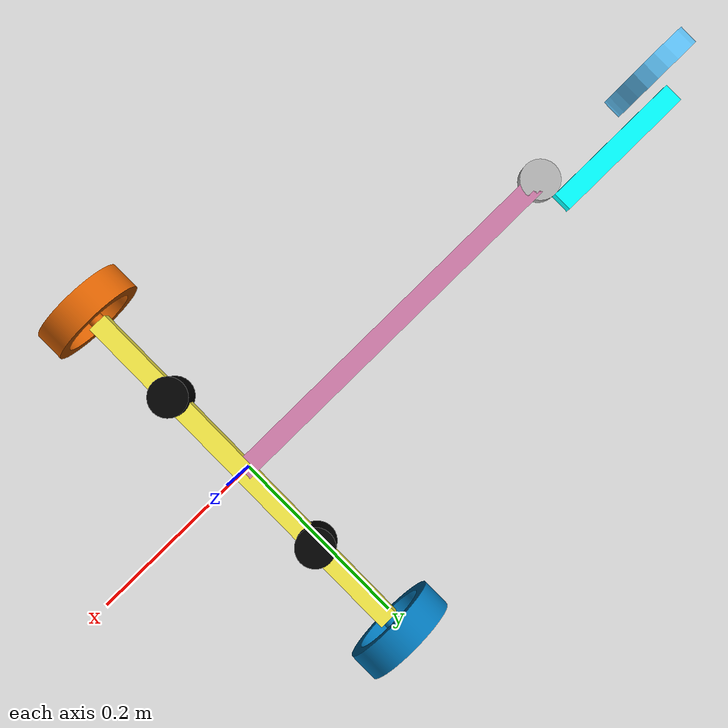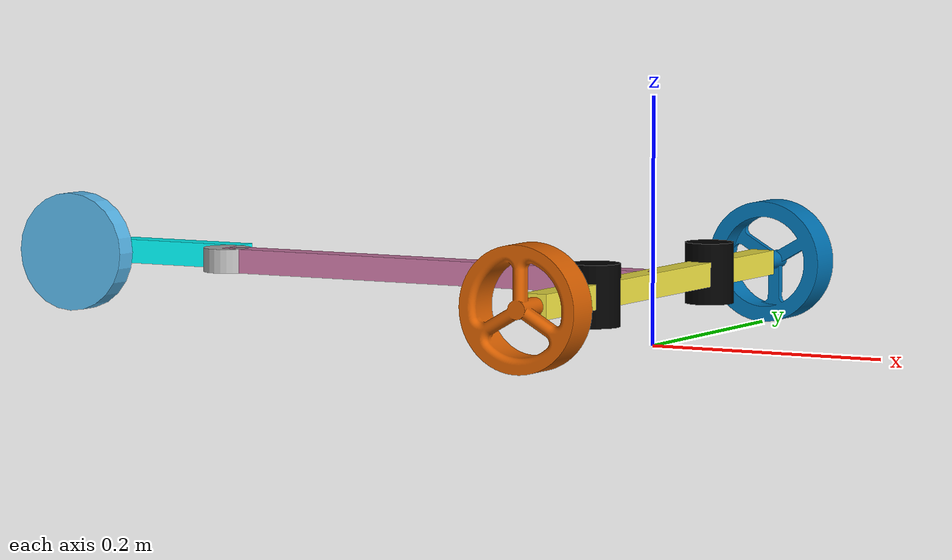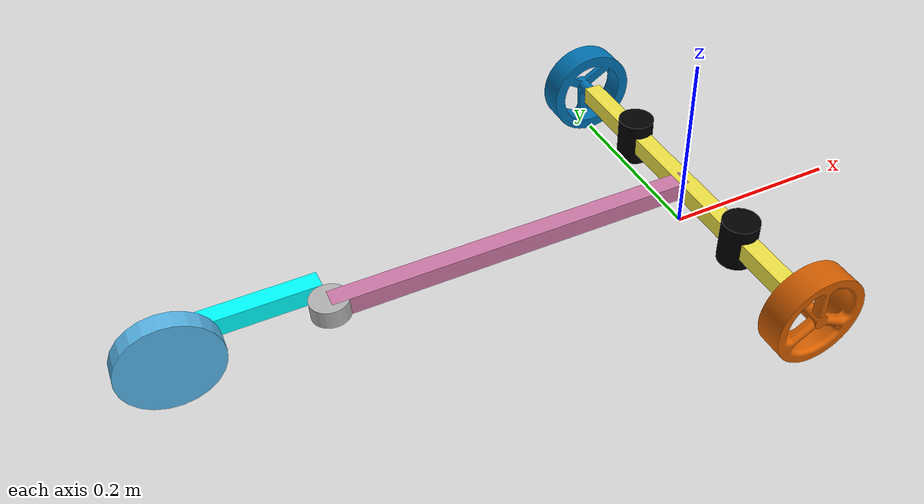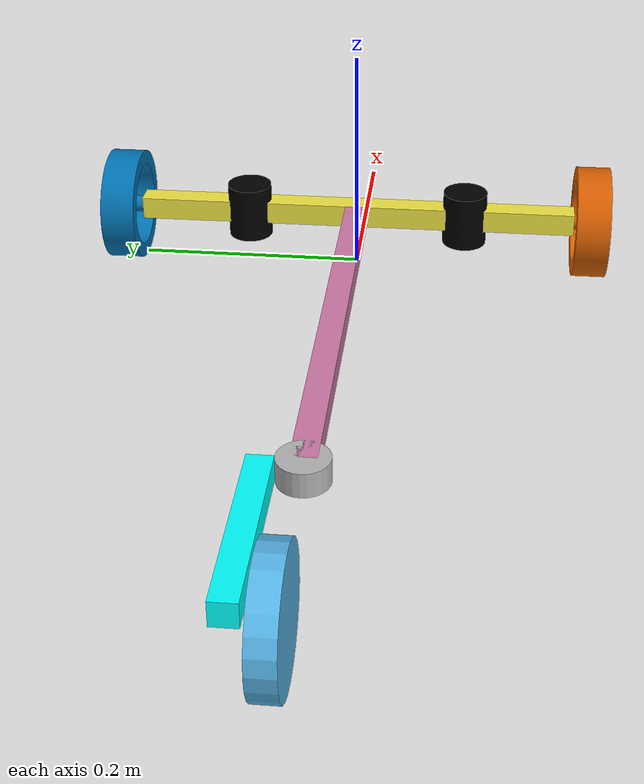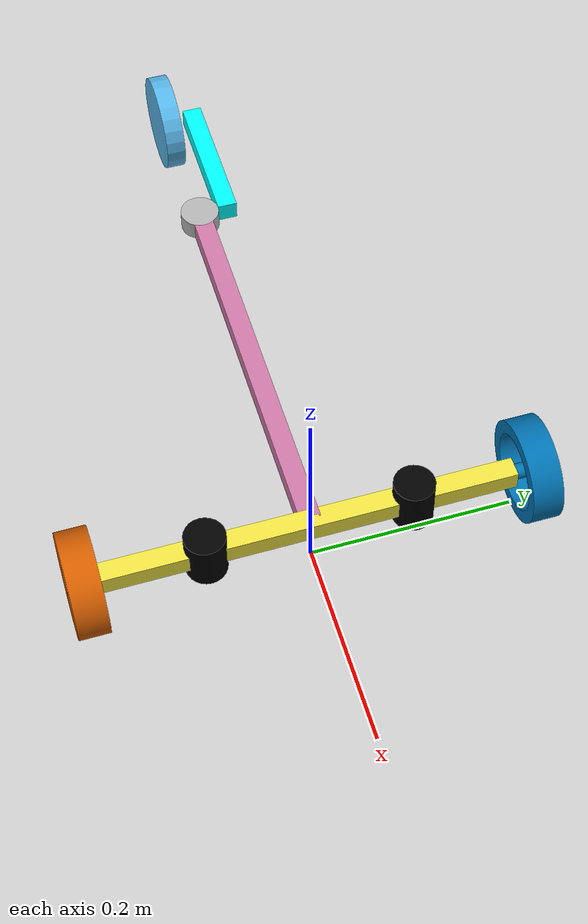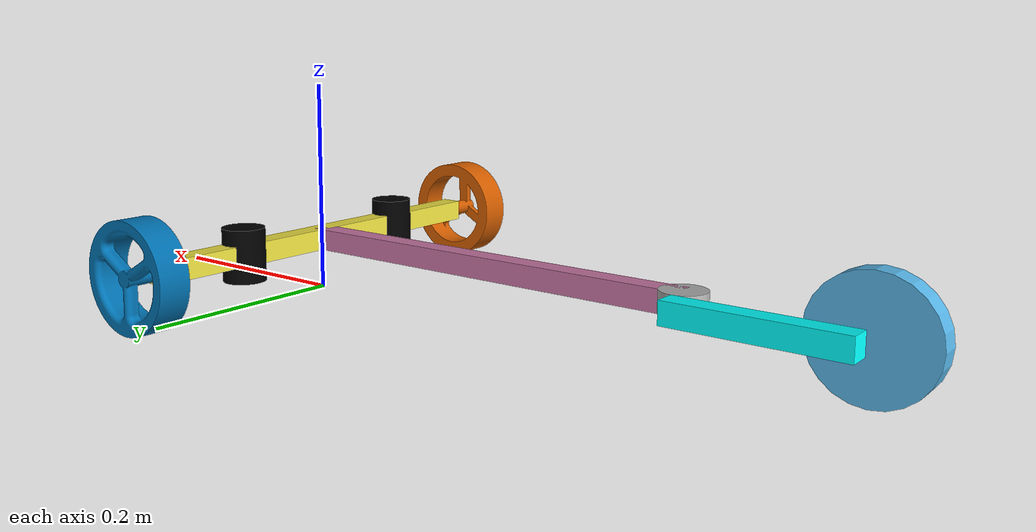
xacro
<?xml version="1.0"?>
<robot name="robot_2_0" xmlns:xacro="http://www.ros.org/wiki/xacro">

  <xacro:property name="thickness" value="0.02"/>
  <xacro:property name="radius" value="0.05"/>
  <xacro:property name="wheel_thick" value="0.02"/>
  <xacro:property name="front_axle" value="0.2"/>
  <xacro:property name="joint_offset" value="0.4"/>
  <xacro:property name="castor_arm" value="0.15"/>

  <xacro:property name="sensor_right_x" value="0"/>
  <xacro:property name="sensor_right_y" value="-0.1"/>

  <xacro:property name="sensor_left_x" value="0"/>
  <xacro:property name="sensor_left_y" value="0.1"/>

  <xacro:property name="sensor_radius" value="0.02"/>
  <xacro:property name="sensor_height" value="0.05"/>

  <link name="map">
  </link>

  <link name="x_movement">
  </link>

  <link name="y_movement">
  </link>

  <link name="moving_platform">
    <visual>
        <origin xyz="0 0 0" rpy="0 0 0" />
        <geometry>
          <box size="${thickness} ${2*front_axle} ${thickness}"/>
        </geometry>
      </visual>
  </link>

  <link name="left_wheel">
      <visual>
        <origin xyz="0 0 0" rpy="-1.57075 0 0" />
        <geometry>
          <mesh filename="package://simulation_description/description/wheel.dae" scale="0.001 0.001 0.001"/>
        </geometry>
      </visual>
    </link>

    <link name="right_wheel">
      <visual>
        <origin xyz="0 0 0" rpy="1.57075 0 0" />
        <geometry>
          <mesh filename="package://simulation_description/description/wheel.dae" scale="0.001 0.001 0.001"/>
        </geometry>
      </visual>
    </link>

    <link name="joint_offset">
      <visual>
        <origin xyz="0 0 0" rpy="0 0 0" />
        <geometry>
          <box size="${joint_offset} ${thickness}  ${thickness}"/>
        </geometry>
      </visual>
    </link>

      <link name="castor_cylinder">
      <visual>
        <origin xyz="0 0 0" rpy="0 0 0" />
        <geometry>
          <cylinder length="${thickness}" radius="${wheel_thick}"/>
        </geometry>
      </visual>
    </link>

    <link name="castor_arm">
      <visual>
        <origin xyz="${-0.5*castor_arm} 0 0" rpy="0 0 0" />
        <geometry>
          <box size="${castor_arm} ${thickness}  ${thickness}"/>
        </geometry>
        <material name="Cyan">
          <color rgba="0 1.0 1.0 1.0"/>
        </material>
      </visual>
    </link>

   <link name="castor_wheel">
      <visual>
        <origin xyz="0 0 0" rpy="1.57075 0 0" />
        <geometry>
          <cylinder length="${wheel_thick}" radius="${radius}"/>
        </geometry>
      </visual>
    </link>

    <link name="sensor_right">
       <visual>
         <origin xyz="0 0 0" rpy="0 0 0" />
         <geometry>
           <cylinder length="${sensor_height}" radius="${sensor_radius}"/>
         </geometry>
         <material name="Black">
           <color rgba="0 0 0 1.0"/>
         </material>
       </visual>
     </link>

     <link name="sensor_left">
        <visual>
          <origin xyz="0 0 0" rpy="0 0 0" />
          <geometry>
            <cylinder length="${sensor_height}" radius="${sensor_radius}"/>
          </geometry>
          <material name="Black">
            <color rgba="0 0 0 1.0"/>
          </material>
        </visual>
      </link>

  <!--                Joints                  -->

  <joint name="move_along_x" type="prismatic">
    <parent link="map"/>
    <child link="x_movement"/>
    <limit effort="1000.0" lower="-10" upper="10" velocity="0.5"/>
    <axis xyz="1 0 0"/>
    <origin rpy="0 0 0" xyz="0 0 0"/>
  </joint>

  <joint name="move_along_y" type="prismatic">
    <parent link="x_movement"/>
    <child link="y_movement"/>
    <limit effort="1000.0" lower="-10" upper="10" velocity="0.5"/>
    <axis xyz="0 1 0"/>
    <origin rpy="0 0 0" xyz="0 0 0"/>
  </joint>

  <joint name="heading" type="continuous">
    <parent link="y_movement"/>
    <child link="moving_platform"/>
    <axis xyz="0 0 1"/>
    <origin rpy="0 0 0" xyz="0 0 ${radius}"/>
  </joint>

  <joint name="left_wheel_joint" type="fixed">
    <axis rpy="0 0 0" xyz="0 1 0"/>
    <parent link="moving_platform"/>
    <child link="left_wheel"/>
    <origin rpy="0 0 0" xyz="0 ${front_axle} 0"/>
  </joint>

  <joint name="right_wheel_joint" type="fixed">
    <axis rpy="0 0 0" xyz="0 1 0"/>
    <parent link="moving_platform"/>
    <child link="right_wheel"/>
    <origin rpy="0 0 0" xyz="0 -${front_axle} 0"/>
  </joint>

  <joint name="joint_offset_joint" type="fixed">
    <axis rpy="0 0 0" xyz="0 1 0"/>
    <parent link="moving_platform"/>
    <child link="joint_offset"/>
    <origin rpy="0 0 0" xyz="-${.5*joint_offset} 0 0"/>
  </joint>

  <joint name="castor_joint" type="revolute">
    <limit lower="-1.57" upper="1.57" effort="10" velocity="3"/>
    <parent link="joint_offset"/>
    <child link="castor_cylinder"/>
    <origin xyz="-${.5*joint_offset} 0 0" rpy="0 0 0" />
    <axis xyz="0 0 1" />
  </joint>

 <joint name="joint_offset_castor" type="fixed">
    <axis rpy="0 0 0" xyz="0 1 0"/>
    <parent link="castor_cylinder"/>
    <child link="castor_arm"/>
    <origin rpy="0 0 0" xyz="0 ${wheel_thick + .5*thickness} 0"/>
  </joint>

 <joint name="castor_wheel_joint" type="fixed">
    <axis rpy="0 0 0" xyz="0 1 0"/>
    <parent link="castor_arm"/>
    <child link="castor_wheel"/>
    <origin rpy="0 0 0" xyz="-${castor_arm} -${wheel_thick + .5*thickness} 0"/>
  </joint>

  <joint name="fix_right_sensor" type="fixed">
    <parent link="moving_platform"/>
    <child link="sensor_right"/>
    <origin rpy="0 0 0" xyz="${sensor_right_x} ${sensor_right_y} 0"/>
  </joint>

  <joint name="fix_left_sensor" type="fixed">
    <parent link="moving_platform"/>
    <child link="sensor_left"/>
    <origin rpy="0 0 0" xyz="${sensor_left_x} ${sensor_left_y} 0"/>
  </joint>

</robot>
